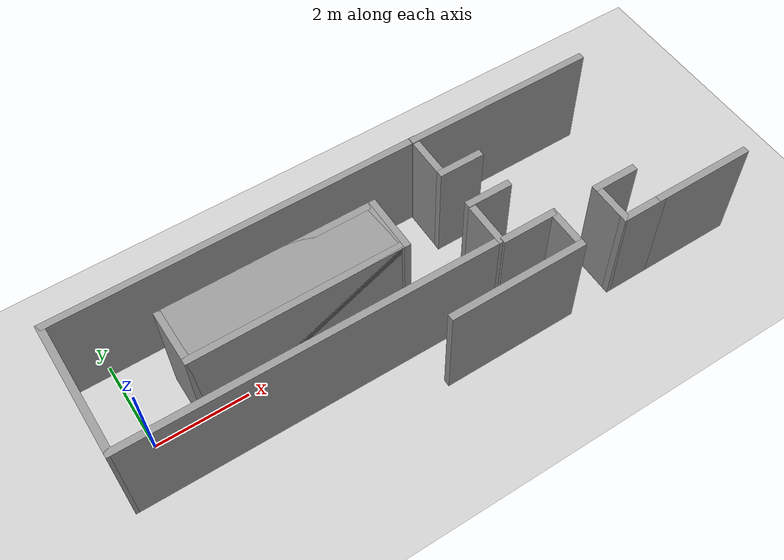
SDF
<sdf version="1.7">
 <world name="default">
  <light name="sun" type="directional">
   <pose>0 0 10 0 -0 0</pose>
   <diffuse>0.8 0.8 0.8 1</diffuse>
   <specular>0.2 0.2 0.2 1</specular>
   <attenuation>
    <range>1000</range>
    <constant>0.9</constant>
    <linear>0.01</linear>
    <quadratic>0.001</quadratic>
   </attenuation>
   <direction>-0.5 0.1 -0.9</direction>
   <spot><inner_angle>0</inner_angle><outer_angle>0</outer_angle><falloff>0</falloff></spot>
  </light>
  <model name="ground_plane">
   <static>1</static>
   <link name="link">
    <collision name="collision">
     <geometry><plane><normal>0 0 1</normal><size>100 100</size></plane></geometry>
     <surface>
      <contact><collide_bitmask>65535</collide_bitmask></contact>
      <friction><ode><mu>100</mu><mu2>50</mu2></ode></friction>
     </surface>
    </collision>
    <visual name="visual">
     <cast_shadows>0</cast_shadows>
     <geometry><plane><normal>0 0 1</normal><size>100 100</size></plane></geometry>
     <material>
      <script><uri>file://media/materials/scripts/gazebo.material</uri><name>Gazebo/Grey</name></script>
     </material>
    </visual>
   </link>
  </model>
  <gravity>0 0 -9.8</gravity>
  <magnetic_field>6e-06 2.3e-05 -4.2e-05</magnetic_field>
  <atmosphere type="adiabatic"/>
  <physics type="ode">
   <max_step_size>0.001</max_step_size>
   <real_time_factor>1</real_time_factor>
   <real_time_update_rate>1000</real_time_update_rate>
  </physics>
  <scene><ambient>0.4 0.4 0.4 1</ambient><background>0.7 0.7 0.7 1</background><shadows>1</shadows></scene>
  <spherical_coordinates>
   <surface_model>EARTH_WGS84</surface_model>
   <latitude_deg>0</latitude_deg>
   <longitude_deg>0</longitude_deg>
   <elevation>0</elevation>
   <heading_deg>0</heading_deg>
  </spherical_coordinates>
  <model name="Untitled">
   <pose>3.13767 -0.467793 -0.093464 0 -0 0</pose>
   <link name="Wall_21">
    <collision name="Wall_21_Collision">
     <geometry><box><size>1 0.15 2.5</size></box></geometry>
     <pose>0 0 1.25 0 -0 0</pose>
    </collision>
    <visual name="Wall_21_Visual">
     <pose>0 0 1.25 0 -0 0</pose>
     <geometry><box><size>1 0.15 2.5</size></box></geometry>
     <material>
      <script><uri>file://media/materials/scripts/gazebo.material</uri><name>Gazebo/Grey</name></script>
      <ambient>1 1 1 1</ambient>
     </material>
     <meta><layer>0</layer></meta>
    </visual>
    <pose>3.933 -0.09023 0 0 -0 -1.5708</pose>
   </link>
   <link name="Wall_26">
    <collision name="Wall_26_Collision">
     <geometry><box><size>8 0.15 2.5</size></box></geometry>
     <pose>0 0 1.25 0 -0 0</pose>
    </collision>
    <visual name="Wall_26_Visual">
     <pose>0 0 1.25 0 -0 0</pose>
     <geometry><box><size>8 0.15 2.5</size></box></geometry>
     <material>
      <script><uri>file://media/materials/scripts/gazebo.material</uri><name>Gazebo/Grey</name></script>
      <ambient>1 1 1 1</ambient>
     </material>
     <meta><layer>0</layer></meta>
    </visual>
    <pose>-0.008 2.38177 0 0 -0 3.14159</pose>
   </link>
   <link name="Wall_27">
    <collision name="Wall_27_Collision">
     <geometry><box><size>3 0.15 2.5</size></box></geometry>
     <pose>0 0 1.25 0 -0 0</pose>
    </collision>
    <visual name="Wall_27_Visual">
     <pose>0 0 1.25 0 -0 0</pose>
     <geometry><box><size>3 0.15 2.5</size></box></geometry>
     <material>
      <script><uri>file://media/materials/scripts/gazebo.material</uri><name>Gazebo/Grey</name></script>
      <ambient>1 1 1 1</ambient>
     </material>
     <meta><layer>0</layer></meta>
    </visual>
    <pose>-3.933 0.956769 0 0 -0 -1.5708</pose>
   </link>
   <link name="Wall_28">
    <collision name="Wall_28_Collision">
     <geometry><box><size>8.01614 0.15 2.5</size></box></geometry>
     <pose>0 0 1.25 0 -0 0</pose>
    </collision>
    <visual name="Wall_28_Visual">
     <pose>0 0 1.25 0 -0 0</pose>
     <geometry><box><size>8.01614 0.15 2.5</size></box></geometry>
     <material>
      <script><uri>file://media/materials/scripts/gazebo.material</uri><name>Gazebo/Grey</name></script>
      <ambient>1 1 1 1</ambient>
     </material>
     <meta><layer>0</layer></meta>
    </visual>
    <pose>0 -0.49173 0 0 -0 -0.005975</pose>
   </link>
   <link name="Wall_31">
    <collision name="Wall_31_Collision">
     <geometry><box><size>4.5 0.15 2.5</size></box></geometry>
     <pose>0 0 1.25 0 -0 0</pose>
    </collision>
    <visual name="Wall_31_Visual">
     <pose>0 0 1.25 0 -0 0</pose>
     <geometry><box><size>4.5 0.15 2.5</size></box></geometry>
     <material>
      <script><uri>file://media/materials/scripts/gazebo.material</uri><name>Gazebo/Grey</name></script>
      <ambient>1 1 1 1</ambient>
     </material>
     <meta><layer>0</layer></meta>
    </visual>
    <pose>0.098693 0.376021 0 0 -0 0</pose>
   </link>
   <link name="Wall_33">
    <collision name="Wall_33_Collision">
     <geometry><box><size>1.25 0.15 2.5</size></box></geometry>
     <pose>0 0 1.25 0 -0 0</pose>
    </collision>
    <visual name="Wall_33_Visual">
     <pose>0 0 1.25 0 -0 0</pose>
     <geometry><box><size>1.25 0.15 2.5</size></box></geometry>
     <material>
      <script><uri>file://media/materials/scripts/gazebo.material</uri><name>Gazebo/Grey</name></script>
      <ambient>1 1 1 1</ambient>
     </material>
     <meta><layer>0</layer></meta>
    </visual>
    <pose>-2.07631 0.926021 0 0 -0 1.5708</pose>
   </link>
   <link name="Wall_34">
    <collision name="Wall_34_Collision">
     <geometry><box><size>4.5 0.15 2.5</size></box></geometry>
     <pose>0 0 1.25 0 -0 0</pose>
    </collision>
    <visual name="Wall_34_Visual">
     <pose>0 0 1.25 0 -0 0</pose>
     <geometry><box><size>4.5 0.15 2.5</size></box></geometry>
     <material>
      <script><uri>file://media/materials/scripts/gazebo.material</uri><name>Gazebo/Grey</name></script>
      <ambient>1 1 1 1</ambient>
     </material>
     <meta><layer>0</layer></meta>
    </visual>
    <pose>0.098693 1.47602 0 0 -0 0</pose>
   </link>
   <link name="Wall_35">
    <collision name="Wall_35_Collision">
     <geometry><box><size>1.25 0.15 2.5</size></box></geometry>
     <pose>0 0 1.25 0 -0 0</pose>
    </collision>
    <visual name="Wall_35_Visual">
     <pose>0 0 1.25 0 -0 0</pose>
     <geometry><box><size>1.25 0.15 2.5</size></box></geometry>
     <material>
      <script><uri>file://media/materials/scripts/gazebo.material</uri><name>Gazebo/Grey</name></script>
      <ambient>1 1 1 1</ambient>
     </material>
     <meta><layer>0</layer></meta>
    </visual>
    <pose>2.27369 0.926021 0 0 -0 -1.5708</pose>
   </link>
   <link name="Wall_9">
    <collision name="Wall_9_Collision">
     <geometry><box><size>1 0.15 2.5</size></box></geometry>
     <pose>0 0 1.25 0 -0 0</pose>
    </collision>
    <visual name="Wall_9_Visual">
     <pose>0 0 1.25 0 -0 0</pose>
     <geometry><box><size>1 0.15 2.5</size></box></geometry>
     <material>
      <script><uri>file://media/materials/scripts/gazebo.material</uri><name>Gazebo/Grey</name></script>
      <ambient>1 1 1 1</ambient>
     </material>
     <meta><layer>0</layer></meta>
    </visual>
    <pose>3.917 1.95677 0 0 -0 -1.5708</pose>
   </link>
   <link name="InnerBox">
    <pose>0.24 0.926021 1.25 0 0 0</pose>
    <collision name="InnerBox_Collision"><geometry><box><size>4.5 1.25 2.5</size></box></geometry></collision>
    <visual name="InnerBox_Visual">
     <geometry><box><size>4.5 1.25 2.5</size></box></geometry>
     <material>
      <script><uri>file://media/materials/scripts/gazebo.material</uri><name>Gazebo/Grey</name></script>
      <ambient>1 1 1 1</ambient>
     </material>
     <meta><layer>0</layer></meta>
    </visual>
   </link>
   <static>1</static>
  </model>
  <model name="Untitled_1">
   <pose>6.24467 0.006896 -0.075008 0 -0 0</pose>
   <link name="Wall_10">
    <collision name="Wall_10_Collision">
     <geometry><box><size>3 0.15 2.5</size></box></geometry>
     <pose>0 0 1.25 0 -0 0</pose>
    </collision>
    <visual name="Wall_10_Visual">
     <pose>0 0 1.25 0 -0 0</pose>
     <geometry><box><size>3 0.15 2.5</size></box></geometry>
     <material>
      <script><uri>file://media/materials/scripts/gazebo.material</uri><name>Gazebo/Grey</name></script>
      <ambient>1 1 1 1</ambient>
     </material>
     <meta><layer>0</layer></meta>
    </visual>
    <pose>0.5825 -1.88826 0 0 -0 3.14159</pose>
   </link>
   <link name="Wall_14">
    <collision name="Wall_14_Collision">
     <geometry><box><size>1 0.15 2.5</size></box></geometry>
     <pose>0 0 1.25 0 -0 0</pose>
    </collision>
    <visual name="Wall_14_Visual">
     <pose>0 0 1.25 0 -0 0</pose>
     <geometry><box><size>1 0.15 2.5</size></box></geometry>
     <material>
      <script><uri>file://media/materials/scripts/gazebo.material</uri><name>Gazebo/Grey</name></script>
      <ambient>1 1 1 1</ambient>
     </material>
     <meta><layer>0</layer></meta>
    </visual>
    <pose>3.5025 -1.87826 0 0 -0 0</pose>
   </link>
   <link name="Wall_16">
    <collision name="Wall_16_Collision">
     <geometry><box><size>1 0.15 2.5</size></box></geometry>
     <pose>0 0 1.25 0 -0 0</pose>
    </collision>
    <visual name="Wall_16_Visual">
     <pose>0 0 1.25 0 -0 0</pose>
     <geometry><box><size>1 0.15 2.5</size></box></geometry>
     <material>
      <script><uri>file://media/materials/scripts/gazebo.material</uri><name>Gazebo/Grey</name></script>
      <ambient>1 1 1 1</ambient>
     </material>
     <meta><layer>0</layer></meta>
    </visual>
    <pose>3.0775 -1.45326 0 0 -0 1.5708</pose>
   </link>
   <link name="Wall_17">
    <collision name="Wall_17_Collision">
     <geometry><box><size>1 0.15 2.5</size></box></geometry>
     <pose>0 0 1.25 0 -0 0</pose>
    </collision>
    <visual name="Wall_17_Visual">
     <pose>0 0 1.25 0 -0 0</pose>
     <geometry><box><size>1 0.15 2.5</size></box></geometry>
     <material>
      <script><uri>file://media/materials/scripts/gazebo.material</uri><name>Gazebo/Grey</name></script>
      <ambient>1 1 1 1</ambient>
     </material>
     <meta><layer>0</layer></meta>
    </visual>
    <pose>3.5025 -1.02826 0 0 -0 0</pose>
   </link>
   <link name="Wall_27">
    <collision name="Wall_27_Collision">
     <geometry><box><size>4.25 0.15 2.5</size></box></geometry>
     <pose>0 0 1.25 0 -0 0</pose>
    </collision>
    <visual name="Wall_27_Visual">
     <pose>0 0 1.25 0 -0 0</pose>
     <geometry><box><size>4.25 0.15 2.5</size></box></geometry>
     <material>
      <script><uri>file://media/materials/scripts/gazebo.material</uri><name>Gazebo/Grey</name></script>
      <ambient>1 1 1 1</ambient>
     </material>
     <meta><layer>0</layer></meta>
    </visual>
    <pose>2.85919 1.88826 0 0 -0 0</pose>
   </link>
   <link name="Wall_29">
    <collision name="Wall_29_Collision">
     <geometry><box><size>2.25 0.15 2.5</size></box></geometry>
     <pose>0 0 1.25 0 -0 0</pose>
    </collision>
    <visual name="Wall_29_Visual">
     <pose>0 0 1.25 0 -0 0</pose>
     <geometry><box><size>2.25 0.15 2.5</size></box></geometry>
     <material>
      <script><uri>file://media/materials/scripts/gazebo.material</uri><name>Gazebo/Grey</name></script>
      <ambient>1 1 1 1</ambient>
     </material>
     <meta><layer>0</layer></meta>
    </visual>
    <pose>4.9775 -1.87826 0 0 -0 0</pose>
   </link>
   <link name="Wall_36">
    <collision name="Wall_36_Collision">
     <geometry><box><size>1 0.15 2.5</size></box></geometry>
     <pose>0 0 1.25 0 -0 0</pose>
    </collision>
    <visual name="Wall_36_Visual">
     <pose>0 0 1.25 0 -0 0</pose>
     <geometry><box><size>1 0.15 2.5</size></box></geometry>
     <material>
      <script><uri>file://media/materials/scripts/gazebo.material</uri><name>Gazebo/Grey</name></script>
      <ambient>1 1 1 1</ambient>
     </material>
     <meta><layer>0</layer></meta>
    </visual>
    <pose>1.25196 -0.005971 0 0 -0 0</pose>
   </link>
   <link name="Wall_48">
    <collision name="Wall_48_Collision">
     <geometry><box><size>1 0.15 2.5</size></box></geometry>
     <pose>0 0 1.25 0 -0 0</pose>
    </collision>
    <visual name="Wall_48_Visual">
     <pose>0 0 1.25 0 -0 0</pose>
     <geometry><box><size>1 0.15 2.5</size></box></geometry>
     <material>
      <script><uri>file://media/materials/scripts/gazebo.material</uri><name>Gazebo/Grey</name></script>
      <ambient>1 1 1 1</ambient>
     </material>
     <meta><layer>0</layer></meta>
    </visual>
    <pose>1.22927 0.901401 0 0 -0 0</pose>
   </link>
   <link name="Wall_8">
    <collision name="Wall_8_Collision">
     <geometry><box><size>1.25 0.15 2.5</size></box></geometry>
     <pose>0 0 1.25 0 -0 0</pose>
    </collision>
    <visual name="Wall_8_Visual">
     <pose>0 0 1.25 0 -0 0</pose>
     <geometry><box><size>1.25 0.15 2.5</size></box></geometry>
     <material>
      <script><uri>file://media/materials/scripts/gazebo.material</uri><name>Gazebo/Grey</name></script>
      <ambient>1 1 1 1</ambient>
     </material>
     <meta><layer>0</layer></meta>
    </visual>
    <pose>1.4575 -1.03826 0 0 -0 0</pose>
   </link>
   <link name="Wall_9">
    <collision name="Wall_9_Collision">
     <geometry><box><size>1 0.15 2.5</size></box></geometry>
     <pose>0 0 1.25 0 -0 0</pose>
    </collision>
    <visual name="Wall_9_Visual">
     <pose>0 0 1.25 0 -0 0</pose>
     <geometry><box><size>1 0.15 2.5</size></box></geometry>
     <material>
      <script><uri>file://media/materials/scripts/gazebo.material</uri><name>Gazebo/Grey</name></script>
      <ambient>1 1 1 1</ambient>
     </material>
     <meta><layer>0</layer></meta>
    </visual>
    <pose>2.0075 -1.46326 0 0 -0 -1.5708</pose>
   </link>
   <static>1</static>
  </model>
 </world>
</sdf>
